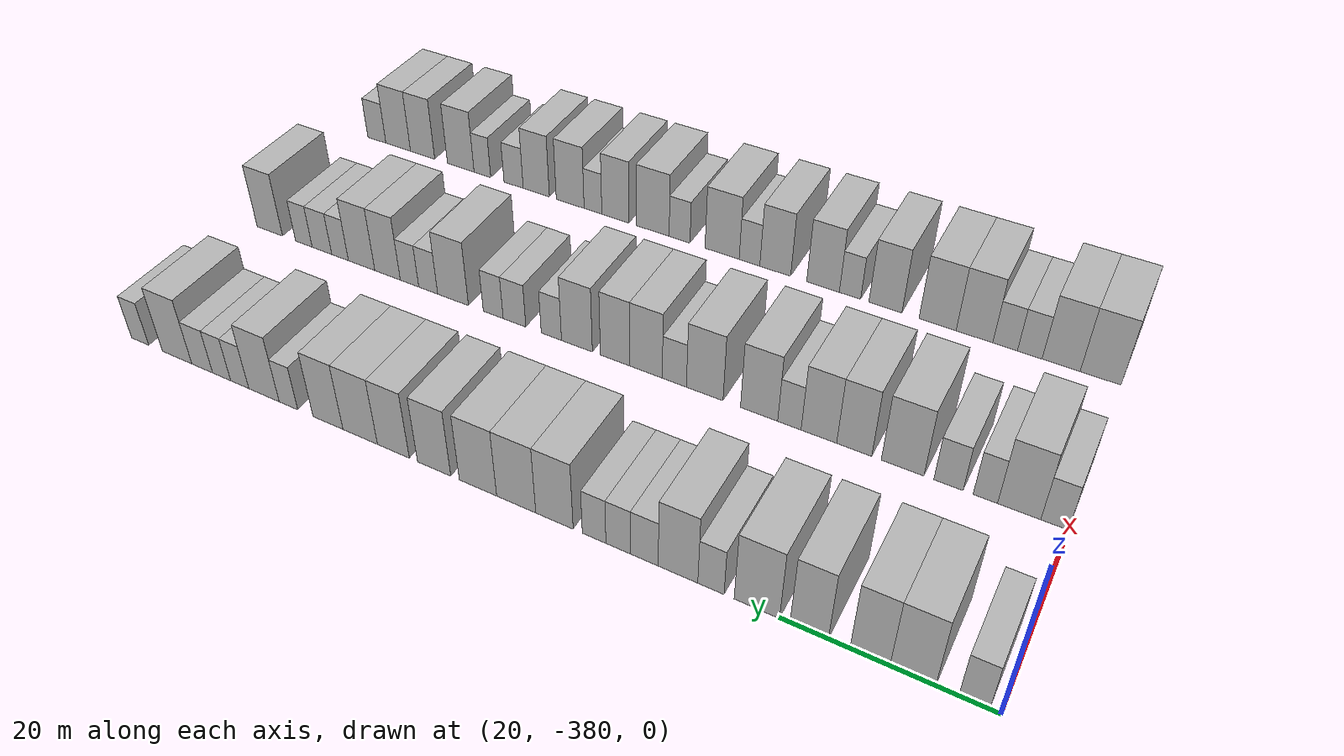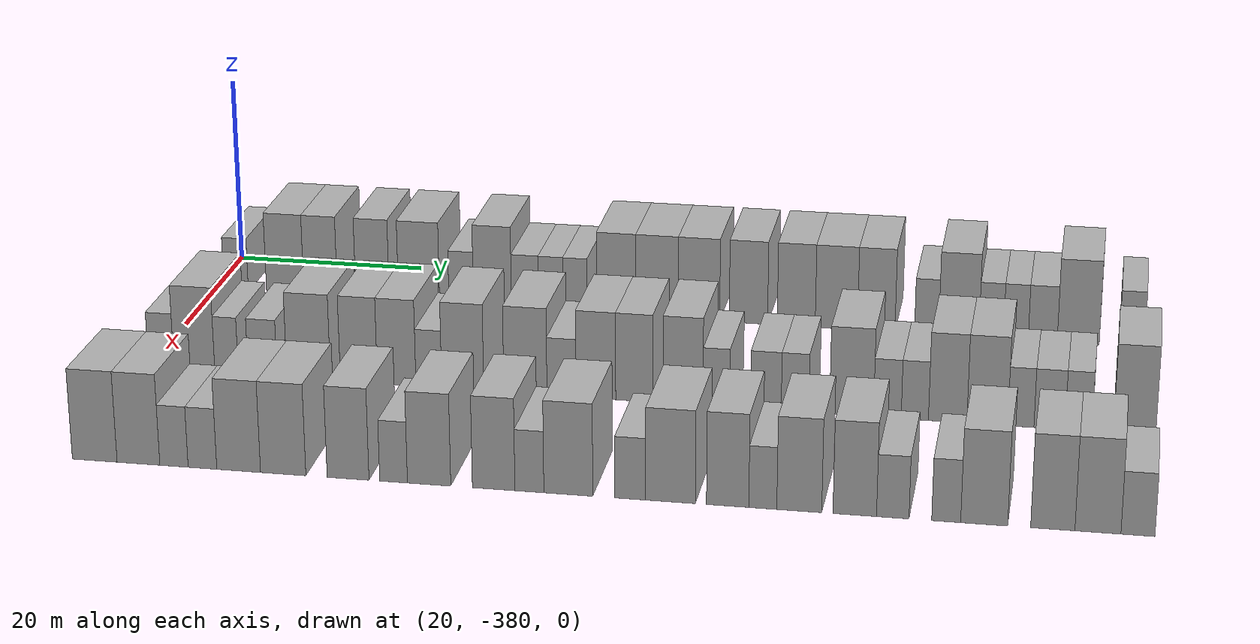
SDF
<sdf version="1.6">
 <world name="default">
  <model name="building_1">
   <static>1</static>
   <pose>25.0000 -377.6687 0 0.000000 0.000000 0.000000</pose>
   <link name="link">
    <pose>0 0 3.00 0 0 0</pose>
    <collision name="collision"><geometry><box><size>10.0000 2.6627 6.0000</size></box></geometry></collision>
    <visual name="visual">
     <cast_shadows>0</cast_shadows>
     <geometry><box><size>10.0000 2.6627 6.0000</size></box></geometry>
     <material>
      <script>
       <uri>model://HANNAS_wall/materials/scripts</uri>
       <uri>model://HANNAS_wall/materials/textures</uri>
       <name>vrc/HANNAS_wall</name>
      </script>
     </material>
    </visual>
   </link>
  </model>
  <model name="building_2">
   <static>1</static>
   <pose>25.0000 -372.3006 0 0.000000 0.000000 0.000000</pose>
   <link name="link">
    <pose>0 0 4.50 0 0 0</pose>
    <collision name="collision"><geometry><box><size>10.0000 4.0735 9.0000</size></box></geometry></collision>
    <visual name="visual">
     <cast_shadows>0</cast_shadows>
     <geometry><box><size>10.0000 4.0735 9.0000</size></box></geometry>
     <material>
      <script>
       <uri>model://HANNAS_wall/materials/scripts</uri>
       <uri>model://HANNAS_wall/materials/textures</uri>
       <name>vrc/HANNAS_wall</name>
      </script>
     </material>
    </visual>
   </link>
  </model>
  <model name="building_3">
   <static>1</static>
   <pose>25.0000 -368.4430 0 0.000000 0.000000 0.000000</pose>
   <link name="link">
    <pose>0 0 4.50 0 0 0</pose>
    <collision name="collision"><geometry><box><size>10.0000 3.6417 9.0000</size></box></geometry></collision>
    <visual name="visual">
     <cast_shadows>0</cast_shadows>
     <geometry><box><size>10.0000 3.6417 9.0000</size></box></geometry>
     <material>
      <script>
       <uri>model://HANNAS_wall/materials/scripts</uri>
       <uri>model://HANNAS_wall/materials/textures</uri>
       <name>vrc/HANNAS_wall</name>
      </script>
     </material>
    </visual>
   </link>
  </model>
  <model name="building_4">
   <static>1</static>
   <pose>25.0000 -362.8144 0 0.000000 0.000000 0.000000</pose>
   <link name="link">
    <pose>0 0 4.50 0 0 0</pose>
    <collision name="collision"><geometry><box><size>10.0000 3.6155 9.0000</size></box></geometry></collision>
    <visual name="visual">
     <cast_shadows>0</cast_shadows>
     <geometry><box><size>10.0000 3.6155 9.0000</size></box></geometry>
     <material>
      <script>
       <uri>model://HANNAS_wall/materials/scripts</uri>
       <uri>model://HANNAS_wall/materials/textures</uri>
       <name>vrc/HANNAS_wall</name>
      </script>
     </material>
    </visual>
   </link>
  </model>
  <model name="building_5">
   <static>1</static>
   <pose>25.0000 -357.7991 0 0.000000 0.000000 0.000000</pose>
   <link name="link">
    <pose>0 0 4.50 0 0 0</pose>
    <collision name="collision"><geometry><box><size>10.0000 4.4150 9.0000</size></box></geometry></collision>
    <visual name="visual">
     <cast_shadows>0</cast_shadows>
     <geometry><box><size>10.0000 4.4150 9.0000</size></box></geometry>
     <material>
      <script>
       <uri>model://HANNAS_wall/materials/scripts</uri>
       <uri>model://HANNAS_wall/materials/textures</uri>
       <name>vrc/HANNAS_wall</name>
      </script>
     </material>
    </visual>
   </link>
  </model>
  <model name="building_6">
   <static>1</static>
   <pose>25.0000 -353.2756 0 0.000000 0.000000 0.000000</pose>
   <link name="link">
    <pose>0 0 3.00 0 0 0</pose>
    <collision name="collision"><geometry><box><size>10.0000 2.6321 6.0000</size></box></geometry></collision>
    <visual name="visual">
     <cast_shadows>0</cast_shadows>
     <geometry><box><size>10.0000 2.6321 6.0000</size></box></geometry>
     <material>
      <script>
       <uri>model://HANNAS_wall/materials/scripts</uri>
       <uri>model://HANNAS_wall/materials/textures</uri>
       <name>vrc/HANNAS_wall</name>
      </script>
     </material>
    </visual>
   </link>
  </model>
  <model name="building_7">
   <static>1</static>
   <pose>25.0000 -349.9345 0 0.000000 0.000000 0.000000</pose>
   <link name="link">
    <pose>0 0 4.50 0 0 0</pose>
    <collision name="collision"><geometry><box><size>10.0000 4.0500 9.0000</size></box></geometry></collision>
    <visual name="visual">
     <cast_shadows>0</cast_shadows>
     <geometry><box><size>10.0000 4.0500 9.0000</size></box></geometry>
     <material>
      <script>
       <uri>model://HANNAS_wall/materials/scripts</uri>
       <uri>model://HANNAS_wall/materials/textures</uri>
       <name>vrc/HANNAS_wall</name>
      </script>
     </material>
    </visual>
   </link>
  </model>
  <model name="building_8">
   <static>1</static>
   <pose>25.0000 -346.4690 0 0.000000 0.000000 0.000000</pose>
   <link name="link">
    <pose>0 0 3.00 0 0 0</pose>
    <collision name="collision"><geometry><box><size>10.0000 2.8810 6.0000</size></box></geometry></collision>
    <visual name="visual">
     <cast_shadows>0</cast_shadows>
     <geometry><box><size>10.0000 2.8810 6.0000</size></box></geometry>
     <material>
      <script>
       <uri>model://HANNAS_wall/materials/scripts</uri>
       <uri>model://HANNAS_wall/materials/textures</uri>
       <name>vrc/HANNAS_wall</name>
      </script>
     </material>
    </visual>
   </link>
  </model>
  <model name="building_9">
   <static>1</static>
   <pose>25.0000 -343.7226 0 0.000000 0.000000 0.000000</pose>
   <link name="link">
    <pose>0 0 3.00 0 0 0</pose>
    <collision name="collision"><geometry><box><size>10.0000 2.6119 6.0000</size></box></geometry></collision>
    <visual name="visual">
     <cast_shadows>0</cast_shadows>
     <geometry><box><size>10.0000 2.6119 6.0000</size></box></geometry>
     <material>
      <script>
       <uri>model://HANNAS_wall/materials/scripts</uri>
       <uri>model://HANNAS_wall/materials/textures</uri>
       <name>vrc/HANNAS_wall</name>
      </script>
     </material>
    </visual>
   </link>
  </model>
  <model name="building_10">
   <static>1</static>
   <pose>25.0000 -341.1468 0 0.000000 0.000000 0.000000</pose>
   <link name="link">
    <pose>0 0 3.00 0 0 0</pose>
    <collision name="collision"><geometry><box><size>10.0000 2.5396 6.0000</size></box></geometry></collision>
    <visual name="visual">
     <cast_shadows>0</cast_shadows>
     <geometry><box><size>10.0000 2.5396 6.0000</size></box></geometry>
     <material>
      <script>
       <uri>model://HANNAS_wall/materials/scripts</uri>
       <uri>model://HANNAS_wall/materials/textures</uri>
       <name>vrc/HANNAS_wall</name>
      </script>
     </material>
    </visual>
   </link>
  </model>
  <model name="building_11">
   <static>1</static>
   <pose>25.0000 -336.8118 0 0.000000 0.000000 0.000000</pose>
   <link name="link">
    <pose>0 0 4.50 0 0 0</pose>
    <collision name="collision"><geometry><box><size>10.0000 4.1303 9.0000</size></box></geometry></collision>
    <visual name="visual">
     <cast_shadows>0</cast_shadows>
     <geometry><box><size>10.0000 4.1303 9.0000</size></box></geometry>
     <material>
      <script>
       <uri>model://HANNAS_wall/materials/scripts</uri>
       <uri>model://HANNAS_wall/materials/textures</uri>
       <name>vrc/HANNAS_wall</name>
      </script>
     </material>
    </visual>
   </link>
  </model>
  <model name="building_12">
   <static>1</static>
   <pose>25.0000 -332.5294 0 0.000000 0.000000 0.000000</pose>
   <link name="link">
    <pose>0 0 4.50 0 0 0</pose>
    <collision name="collision"><geometry><box><size>10.0000 4.4346 9.0000</size></box></geometry></collision>
    <visual name="visual">
     <cast_shadows>0</cast_shadows>
     <geometry><box><size>10.0000 4.4346 9.0000</size></box></geometry>
     <material>
      <script>
       <uri>model://HANNAS_wall/materials/scripts</uri>
       <uri>model://HANNAS_wall/materials/textures</uri>
       <name>vrc/HANNAS_wall</name>
      </script>
     </material>
    </visual>
   </link>
  </model>
  <model name="building_13">
   <static>1</static>
   <pose>25.0000 -328.1446 0 0.000000 0.000000 0.000000</pose>
   <link name="link">
    <pose>0 0 4.50 0 0 0</pose>
    <collision name="collision"><geometry><box><size>10.0000 4.3350 9.0000</size></box></geometry></collision>
    <visual name="visual">
     <cast_shadows>0</cast_shadows>
     <geometry><box><size>10.0000 4.3350 9.0000</size></box></geometry>
     <material>
      <script>
       <uri>model://HANNAS_wall/materials/scripts</uri>
       <uri>model://HANNAS_wall/materials/textures</uri>
       <name>vrc/HANNAS_wall</name>
      </script>
     </material>
    </visual>
   </link>
  </model>
  <model name="building_14">
   <static>1</static>
   <pose>25.0000 -322.9894 0 0.000000 0.000000 0.000000</pose>
   <link name="link">
    <pose>0 0 4.50 0 0 0</pose>
    <collision name="collision"><geometry><box><size>10.0000 3.9753 9.0000</size></box></geometry></collision>
    <visual name="visual">
     <cast_shadows>0</cast_shadows>
     <geometry><box><size>10.0000 3.9753 9.0000</size></box></geometry>
     <material>
      <script>
       <uri>model://HANNAS_wall/materials/scripts</uri>
       <uri>model://HANNAS_wall/materials/textures</uri>
       <name>vrc/HANNAS_wall</name>
      </script>
     </material>
    </visual>
   </link>
  </model>
  <model name="building_15">
   <static>1</static>
   <pose>25.0000 -318.0408 0 0.000000 0.000000 0.000000</pose>
   <link name="link">
    <pose>0 0 4.50 0 0 0</pose>
    <collision name="collision"><geometry><box><size>10.0000 3.9221 9.0000</size></box></geometry></collision>
    <visual name="visual">
     <cast_shadows>0</cast_shadows>
     <geometry><box><size>10.0000 3.9221 9.0000</size></box></geometry>
     <material>
      <script>
       <uri>model://HANNAS_wall/materials/scripts</uri>
       <uri>model://HANNAS_wall/materials/textures</uri>
       <name>vrc/HANNAS_wall</name>
      </script>
     </material>
    </visual>
   </link>
  </model>
  <model name="building_16">
   <static>1</static>
   <pose>25.0000 -313.9047 0 0.000000 0.000000 0.000000</pose>
   <link name="link">
    <pose>0 0 4.50 0 0 0</pose>
    <collision name="collision"><geometry><box><size>10.0000 4.3501 9.0000</size></box></geometry></collision>
    <visual name="visual">
     <cast_shadows>0</cast_shadows>
     <geometry><box><size>10.0000 4.3501 9.0000</size></box></geometry>
     <material>
      <script>
       <uri>model://HANNAS_wall/materials/scripts</uri>
       <uri>model://HANNAS_wall/materials/textures</uri>
       <name>vrc/HANNAS_wall</name>
      </script>
     </material>
    </visual>
   </link>
  </model>
  <model name="building_17">
   <static>1</static>
   <pose>25.0000 -309.8075 0 0.000000 0.000000 0.000000</pose>
   <link name="link">
    <pose>0 0 4.50 0 0 0</pose>
    <collision name="collision"><geometry><box><size>10.0000 3.8443 9.0000</size></box></geometry></collision>
    <visual name="visual">
     <cast_shadows>0</cast_shadows>
     <geometry><box><size>10.0000 3.8443 9.0000</size></box></geometry>
     <material>
      <script>
       <uri>model://HANNAS_wall/materials/scripts</uri>
       <uri>model://HANNAS_wall/materials/textures</uri>
       <name>vrc/HANNAS_wall</name>
      </script>
     </material>
    </visual>
   </link>
  </model>
  <model name="building_18">
   <static>1</static>
   <pose>25.0000 -304.6576 0 0.000000 0.000000 0.000000</pose>
   <link name="link">
    <pose>0 0 3.00 0 0 0</pose>
    <collision name="collision"><geometry><box><size>10.0000 2.4554 6.0000</size></box></geometry></collision>
    <visual name="visual">
     <cast_shadows>0</cast_shadows>
     <geometry><box><size>10.0000 2.4554 6.0000</size></box></geometry>
     <material>
      <script>
       <uri>model://HANNAS_wall/materials/scripts</uri>
       <uri>model://HANNAS_wall/materials/textures</uri>
       <name>vrc/HANNAS_wall</name>
      </script>
     </material>
    </visual>
   </link>
  </model>
  <model name="building_19">
   <static>1</static>
   <pose>25.0000 -301.3828 0 0.000000 0.000000 0.000000</pose>
   <link name="link">
    <pose>0 0 4.50 0 0 0</pose>
    <collision name="collision"><geometry><box><size>10.0000 4.0942 9.0000</size></box></geometry></collision>
    <visual name="visual">
     <cast_shadows>0</cast_shadows>
     <geometry><box><size>10.0000 4.0942 9.0000</size></box></geometry>
     <material>
      <script>
       <uri>model://HANNAS_wall/materials/scripts</uri>
       <uri>model://HANNAS_wall/materials/textures</uri>
       <name>vrc/HANNAS_wall</name>
      </script>
     </material>
    </visual>
   </link>
  </model>
  <model name="building_20">
   <static>1</static>
   <pose>25.0000 -298.0939 0 0.000000 0.000000 0.000000</pose>
   <link name="link">
    <pose>0 0 3.00 0 0 0</pose>
    <collision name="collision"><geometry><box><size>10.0000 2.4836 6.0000</size></box></geometry></collision>
    <visual name="visual">
     <cast_shadows>0</cast_shadows>
     <geometry><box><size>10.0000 2.4836 6.0000</size></box></geometry>
     <material>
      <script>
       <uri>model://HANNAS_wall/materials/scripts</uri>
       <uri>model://HANNAS_wall/materials/textures</uri>
       <name>vrc/HANNAS_wall</name>
      </script>
     </material>
    </visual>
   </link>
  </model>
  <model name="building_21">
   <static>1</static>
   <pose>25.0000 -295.6009 0 0.000000 0.000000 0.000000</pose>
   <link name="link">
    <pose>0 0 3.00 0 0 0</pose>
    <collision name="collision"><geometry><box><size>10.0000 2.5025 6.0000</size></box></geometry></collision>
    <visual name="visual">
     <cast_shadows>0</cast_shadows>
     <geometry><box><size>10.0000 2.5025 6.0000</size></box></geometry>
     <material>
      <script>
       <uri>model://HANNAS_wall/materials/scripts</uri>
       <uri>model://HANNAS_wall/materials/textures</uri>
       <name>vrc/HANNAS_wall</name>
      </script>
     </material>
    </visual>
   </link>
  </model>
  <model name="building_22">
   <static>1</static>
   <pose>25.0000 -292.8874 0 0.000000 0.000000 0.000000</pose>
   <link name="link">
    <pose>0 0 3.00 0 0 0</pose>
    <collision name="collision"><geometry><box><size>10.0000 2.9245 6.0000</size></box></geometry></collision>
    <visual name="visual">
     <cast_shadows>0</cast_shadows>
     <geometry><box><size>10.0000 2.9245 6.0000</size></box></geometry>
     <material>
      <script>
       <uri>model://HANNAS_wall/materials/scripts</uri>
       <uri>model://HANNAS_wall/materials/textures</uri>
       <name>vrc/HANNAS_wall</name>
      </script>
     </material>
    </visual>
   </link>
  </model>
  <model name="building_23">
   <static>1</static>
   <pose>25.0000 -289.3206 0 0.000000 0.000000 0.000000</pose>
   <link name="link">
    <pose>0 0 4.50 0 0 0</pose>
    <collision name="collision"><geometry><box><size>10.0000 4.2092 9.0000</size></box></geometry></collision>
    <visual name="visual">
     <cast_shadows>0</cast_shadows>
     <geometry><box><size>10.0000 4.2092 9.0000</size></box></geometry>
     <material>
      <script>
       <uri>model://HANNAS_wall/materials/scripts</uri>
       <uri>model://HANNAS_wall/materials/textures</uri>
       <name>vrc/HANNAS_wall</name>
      </script>
     </material>
    </visual>
   </link>
  </model>
  <model name="building_24">
   <static>1</static>
   <pose>25.0000 -283.9570 0 0.000000 0.000000 0.000000</pose>
   <link name="link">
    <pose>0 0 3.00 0 0 0</pose>
    <collision name="collision"><geometry><box><size>10.0000 2.5179 6.0000</size></box></geometry></collision>
    <visual name="visual">
     <cast_shadows>0</cast_shadows>
     <geometry><box><size>10.0000 2.5179 6.0000</size></box></geometry>
     <material>
      <script>
       <uri>model://HANNAS_wall/materials/scripts</uri>
       <uri>model://HANNAS_wall/materials/textures</uri>
       <name>vrc/HANNAS_wall</name>
      </script>
     </material>
    </visual>
   </link>
  </model>
  <model name="building_198">
   <static>1</static>
   <pose>47.0000 -378.6836 0 0.000000 0.000000 0.000000</pose>
   <link name="link">
    <pose>0 0 3.00 0 0 0</pose>
    <collision name="collision"><geometry><box><size>10.0000 2.6328 6.0000</size></box></geometry></collision>
    <visual name="visual">
     <cast_shadows>0</cast_shadows>
     <geometry><box><size>10.0000 2.6328 6.0000</size></box></geometry>
     <material>
      <script>
       <uri>model://HANNAS_wall/materials/scripts</uri>
       <uri>model://HANNAS_wall/materials/textures</uri>
       <name>vrc/HANNAS_wall</name>
      </script>
     </material>
    </visual>
   </link>
  </model>
  <model name="building_199">
   <static>1</static>
   <pose>47.0000 -375.2767 0 0.000000 0.000000 0.000000</pose>
   <link name="link">
    <pose>0 0 4.50 0 0 0</pose>
    <collision name="collision"><geometry><box><size>10.0000 4.1810 9.0000</size></box></geometry></collision>
    <visual name="visual">
     <cast_shadows>0</cast_shadows>
     <geometry><box><size>10.0000 4.1810 9.0000</size></box></geometry>
     <material>
      <script>
       <uri>model://HANNAS_wall/materials/scripts</uri>
       <uri>model://HANNAS_wall/materials/textures</uri>
       <name>vrc/HANNAS_wall</name>
      </script>
     </material>
    </visual>
   </link>
  </model>
  <model name="building_200">
   <static>1</static>
   <pose>47.0000 -371.9806 0 0.000000 0.000000 0.000000</pose>
   <link name="link">
    <pose>0 0 3.00 0 0 0</pose>
    <collision name="collision"><geometry><box><size>10.0000 2.4112 6.0000</size></box></geometry></collision>
    <visual name="visual">
     <cast_shadows>0</cast_shadows>
     <geometry><box><size>10.0000 2.4112 6.0000</size></box></geometry>
     <material>
      <script>
       <uri>model://HANNAS_wall/materials/scripts</uri>
       <uri>model://HANNAS_wall/materials/textures</uri>
       <name>vrc/HANNAS_wall</name>
      </script>
     </material>
    </visual>
   </link>
  </model>
  <model name="building_201">
   <static>1</static>
   <pose>47.0000 -368.2989 0 0.000000 0.000000 0.000000</pose>
   <link name="link">
    <pose>0 0 3.00 0 0 0</pose>
    <collision name="collision"><geometry><box><size>10.0000 2.9522 6.0000</size></box></geometry></collision>
    <visual name="visual">
     <cast_shadows>0</cast_shadows>
     <geometry><box><size>10.0000 2.9522 6.0000</size></box></geometry>
     <material>
      <script>
       <uri>model://HANNAS_wall/materials/scripts</uri>
       <uri>model://HANNAS_wall/materials/textures</uri>
       <name>vrc/HANNAS_wall</name>
      </script>
     </material>
    </visual>
   </link>
  </model>
  <model name="building_202">
   <static>1</static>
   <pose>47.0000 -363.6136 0 0.000000 0.000000 0.000000</pose>
   <link name="link">
    <pose>0 0 4.50 0 0 0</pose>
    <collision name="collision"><geometry><box><size>10.0000 4.4186 9.0000</size></box></geometry></collision>
    <visual name="visual">
     <cast_shadows>0</cast_shadows>
     <geometry><box><size>10.0000 4.4186 9.0000</size></box></geometry>
     <material>
      <script>
       <uri>model://HANNAS_wall/materials/scripts</uri>
       <uri>model://HANNAS_wall/materials/textures</uri>
       <name>vrc/HANNAS_wall</name>
      </script>
     </material>
    </visual>
   </link>
  </model>
  <model name="building_203">
   <static>1</static>
   <pose>47.0000 -358.5353 0 0.000000 0.000000 0.000000</pose>
   <link name="link">
    <pose>0 0 4.50 0 0 0</pose>
    <collision name="collision"><geometry><box><size>10.0000 3.7380 9.0000</size></box></geometry></collision>
    <visual name="visual">
     <cast_shadows>0</cast_shadows>
     <geometry><box><size>10.0000 3.7380 9.0000</size></box></geometry>
     <material>
      <script>
       <uri>model://HANNAS_wall/materials/scripts</uri>
       <uri>model://HANNAS_wall/materials/textures</uri>
       <name>vrc/HANNAS_wall</name>
      </script>
     </material>
    </visual>
   </link>
  </model>
  <model name="building_204">
   <static>1</static>
   <pose>47.0000 -354.7318 0 0.000000 0.000000 0.000000</pose>
   <link name="link">
    <pose>0 0 4.50 0 0 0</pose>
    <collision name="collision"><geometry><box><size>10.0000 3.8689 9.0000</size></box></geometry></collision>
    <visual name="visual">
     <cast_shadows>0</cast_shadows>
     <geometry><box><size>10.0000 3.8689 9.0000</size></box></geometry>
     <material>
      <script>
       <uri>model://HANNAS_wall/materials/scripts</uri>
       <uri>model://HANNAS_wall/materials/textures</uri>
       <name>vrc/HANNAS_wall</name>
      </script>
     </material>
    </visual>
   </link>
  </model>
  <model name="building_205">
   <static>1</static>
   <pose>47.0000 -351.5055 0 0.000000 0.000000 0.000000</pose>
   <link name="link">
    <pose>0 0 3.00 0 0 0</pose>
    <collision name="collision"><geometry><box><size>10.0000 2.5837 6.0000</size></box></geometry></collision>
    <visual name="visual">
     <cast_shadows>0</cast_shadows>
     <geometry><box><size>10.0000 2.5837 6.0000</size></box></geometry>
     <material>
      <script>
       <uri>model://HANNAS_wall/materials/scripts</uri>
       <uri>model://HANNAS_wall/materials/textures</uri>
       <name>vrc/HANNAS_wall</name>
      </script>
     </material>
    </visual>
   </link>
  </model>
  <model name="building_206">
   <static>1</static>
   <pose>47.0000 -348.1180 0 0.000000 0.000000 0.000000</pose>
   <link name="link">
    <pose>0 0 4.50 0 0 0</pose>
    <collision name="collision"><geometry><box><size>10.0000 4.1912 9.0000</size></box></geometry></collision>
    <visual name="visual">
     <cast_shadows>0</cast_shadows>
     <geometry><box><size>10.0000 4.1912 9.0000</size></box></geometry>
     <material>
      <script>
       <uri>model://HANNAS_wall/materials/scripts</uri>
       <uri>model://HANNAS_wall/materials/textures</uri>
       <name>vrc/HANNAS_wall</name>
      </script>
     </material>
    </visual>
   </link>
  </model>
  <model name="building_207">
   <static>1</static>
   <pose>47.0000 -341.8865 0 0.000000 0.000000 0.000000</pose>
   <link name="link">
    <pose>0 0 4.50 0 0 0</pose>
    <collision name="collision"><geometry><box><size>10.0000 4.2717 9.0000</size></box></geometry></collision>
    <visual name="visual">
     <cast_shadows>0</cast_shadows>
     <geometry><box><size>10.0000 4.2717 9.0000</size></box></geometry>
     <material>
      <script>
       <uri>model://HANNAS_wall/materials/scripts</uri>
       <uri>model://HANNAS_wall/materials/textures</uri>
       <name>vrc/HANNAS_wall</name>
      </script>
     </material>
    </visual>
   </link>
  </model>
  <model name="building_208">
   <static>1</static>
   <pose>47.0000 -338.3193 0 0.000000 0.000000 0.000000</pose>
   <link name="link">
    <pose>0 0 3.00 0 0 0</pose>
    <collision name="collision"><geometry><box><size>10.0000 2.8627 6.0000</size></box></geometry></collision>
    <visual name="visual">
     <cast_shadows>0</cast_shadows>
     <geometry><box><size>10.0000 2.8627 6.0000</size></box></geometry>
     <material>
      <script>
       <uri>model://HANNAS_wall/materials/scripts</uri>
       <uri>model://HANNAS_wall/materials/textures</uri>
       <name>vrc/HANNAS_wall</name>
      </script>
     </material>
    </visual>
   </link>
  </model>
  <model name="building_209">
   <static>1</static>
   <pose>47.0000 -334.9326 0 0.000000 0.000000 0.000000</pose>
   <link name="link">
    <pose>0 0 4.50 0 0 0</pose>
    <collision name="collision"><geometry><box><size>10.0000 3.9107 9.0000</size></box></geometry></collision>
    <visual name="visual">
     <cast_shadows>0</cast_shadows>
     <geometry><box><size>10.0000 3.9107 9.0000</size></box></geometry>
     <material>
      <script>
       <uri>model://HANNAS_wall/materials/scripts</uri>
       <uri>model://HANNAS_wall/materials/textures</uri>
       <name>vrc/HANNAS_wall</name>
      </script>
     </material>
    </visual>
   </link>
  </model>
  <model name="building_210">
   <static>1</static>
   <pose>47.0000 -331.1665 0 0.000000 0.000000 0.000000</pose>
   <link name="link">
    <pose>0 0 4.50 0 0 0</pose>
    <collision name="collision"><geometry><box><size>10.0000 3.6214 9.0000</size></box></geometry></collision>
    <visual name="visual">
     <cast_shadows>0</cast_shadows>
     <geometry><box><size>10.0000 3.6214 9.0000</size></box></geometry>
     <material>
      <script>
       <uri>model://HANNAS_wall/materials/scripts</uri>
       <uri>model://HANNAS_wall/materials/textures</uri>
       <name>vrc/HANNAS_wall</name>
      </script>
     </material>
    </visual>
   </link>
  </model>
  <model name="building_211">
   <static>1</static>
   <pose>47.0000 -326.4062 0 0.000000 0.000000 0.000000</pose>
   <link name="link">
    <pose>0 0 4.50 0 0 0</pose>
    <collision name="collision"><geometry><box><size>10.0000 3.8991 9.0000</size></box></geometry></collision>
    <visual name="visual">
     <cast_shadows>0</cast_shadows>
     <geometry><box><size>10.0000 3.8991 9.0000</size></box></geometry>
     <material>
      <script>
       <uri>model://HANNAS_wall/materials/scripts</uri>
       <uri>model://HANNAS_wall/materials/textures</uri>
       <name>vrc/HANNAS_wall</name>
      </script>
     </material>
    </visual>
   </link>
  </model>
  <model name="building_212">
   <static>1</static>
   <pose>47.0000 -323.1576 0 0.000000 0.000000 0.000000</pose>
   <link name="link">
    <pose>0 0 3.00 0 0 0</pose>
    <collision name="collision"><geometry><box><size>10.0000 2.5982 6.0000</size></box></geometry></collision>
    <visual name="visual">
     <cast_shadows>0</cast_shadows>
     <geometry><box><size>10.0000 2.5982 6.0000</size></box></geometry>
     <material>
      <script>
       <uri>model://HANNAS_wall/materials/scripts</uri>
       <uri>model://HANNAS_wall/materials/textures</uri>
       <name>vrc/HANNAS_wall</name>
      </script>
     </material>
    </visual>
   </link>
  </model>
  <model name="building_213">
   <static>1</static>
   <pose>47.0000 -318.3685 0 0.000000 0.000000 0.000000</pose>
   <link name="link">
    <pose>0 0 3.00 0 0 0</pose>
    <collision name="collision"><geometry><box><size>10.0000 2.9801 6.0000</size></box></geometry></collision>
    <visual name="visual">
     <cast_shadows>0</cast_shadows>
     <geometry><box><size>10.0000 2.9801 6.0000</size></box></geometry>
     <material>
      <script>
       <uri>model://HANNAS_wall/materials/scripts</uri>
       <uri>model://HANNAS_wall/materials/textures</uri>
       <name>vrc/HANNAS_wall</name>
      </script>
     </material>
    </visual>
   </link>
  </model>
  <model name="building_214">
   <static>1</static>
   <pose>47.0000 -315.5544 0 0.000000 0.000000 0.000000</pose>
   <link name="link">
    <pose>0 0 3.00 0 0 0</pose>
    <collision name="collision"><geometry><box><size>10.0000 2.6480 6.0000</size></box></geometry></collision>
    <visual name="visual">
     <cast_shadows>0</cast_shadows>
     <geometry><box><size>10.0000 2.6480 6.0000</size></box></geometry>
     <material>
      <script>
       <uri>model://HANNAS_wall/materials/scripts</uri>
       <uri>model://HANNAS_wall/materials/textures</uri>
       <name>vrc/HANNAS_wall</name>
      </script>
     </material>
    </visual>
   </link>
  </model>
  <model name="building_215">
   <static>1</static>
   <pose>47.0000 -310.1244 0 0.000000 0.000000 0.000000</pose>
   <link name="link">
    <pose>0 0 4.50 0 0 0</pose>
    <collision name="collision"><geometry><box><size>10.0000 4.2119 9.0000</size></box></geometry></collision>
    <visual name="visual">
     <cast_shadows>0</cast_shadows>
     <geometry><box><size>10.0000 4.2119 9.0000</size></box></geometry>
     <material>
      <script>
       <uri>model://HANNAS_wall/materials/scripts</uri>
       <uri>model://HANNAS_wall/materials/textures</uri>
       <name>vrc/HANNAS_wall</name>
      </script>
     </material>
    </visual>
   </link>
  </model>
  <model name="building_216">
   <static>1</static>
   <pose>47.0000 -306.6996 0 0.000000 0.000000 0.000000</pose>
   <link name="link">
    <pose>0 0 3.00 0 0 0</pose>
    <collision name="collision"><geometry><box><size>10.0000 2.6378 6.0000</size></box></geometry></collision>
    <visual name="visual">
     <cast_shadows>0</cast_shadows>
     <geometry><box><size>10.0000 2.6378 6.0000</size></box></geometry>
     <material>
      <script>
       <uri>model://HANNAS_wall/materials/scripts</uri>
       <uri>model://HANNAS_wall/materials/textures</uri>
       <name>vrc/HANNAS_wall</name>
      </script>
     </material>
    </visual>
   </link>
  </model>
  <model name="building_217">
   <static>1</static>
   <pose>47.0000 -304.0850 0 0.000000 0.000000 0.000000</pose>
   <link name="link">
    <pose>0 0 3.00 0 0 0</pose>
    <collision name="collision"><geometry><box><size>10.0000 2.5914 6.0000</size></box></geometry></collision>
    <visual name="visual">
     <cast_shadows>0</cast_shadows>
     <geometry><box><size>10.0000 2.5914 6.0000</size></box></geometry>
     <material>
      <script>
       <uri>model://HANNAS_wall/materials/scripts</uri>
       <uri>model://HANNAS_wall/materials/textures</uri>
       <name>vrc/HANNAS_wall</name>
      </script>
     </material>
    </visual>
   </link>
  </model>
  <model name="building_218">
   <static>1</static>
   <pose>47.0000 -300.9670 0 0.000000 0.000000 0.000000</pose>
   <link name="link">
    <pose>0 0 4.50 0 0 0</pose>
    <collision name="collision"><geometry><box><size>10.0000 3.6446 9.0000</size></box></geometry></collision>
    <visual name="visual">
     <cast_shadows>0</cast_shadows>
     <geometry><box><size>10.0000 3.6446 9.0000</size></box></geometry>
     <material>
      <script>
       <uri>model://HANNAS_wall/materials/scripts</uri>
       <uri>model://HANNAS_wall/materials/textures</uri>
       <name>vrc/HANNAS_wall</name>
      </script>
     </material>
    </visual>
   </link>
  </model>
  <model name="building_219">
   <static>1</static>
   <pose>47.0000 -297.2168 0 0.000000 0.000000 0.000000</pose>
   <link name="link">
    <pose>0 0 4.50 0 0 0</pose>
    <collision name="collision"><geometry><box><size>10.0000 3.8558 9.0000</size></box></geometry></collision>
    <visual name="visual">
     <cast_shadows>0</cast_shadows>
     <geometry><box><size>10.0000 3.8558 9.0000</size></box></geometry>
     <material>
      <script>
       <uri>model://HANNAS_wall/materials/scripts</uri>
       <uri>model://HANNAS_wall/materials/textures</uri>
       <name>vrc/HANNAS_wall</name>
      </script>
     </material>
    </visual>
   </link>
  </model>
  <model name="building_220">
   <static>1</static>
   <pose>47.0000 -294.0566 0 0.000000 0.000000 0.000000</pose>
   <link name="link">
    <pose>0 0 3.00 0 0 0</pose>
    <collision name="collision"><geometry><box><size>10.0000 2.4646 6.0000</size></box></geometry></collision>
    <visual name="visual">
     <cast_shadows>0</cast_shadows>
     <geometry><box><size>10.0000 2.4646 6.0000</size></box></geometry>
     <material>
      <script>
       <uri>model://HANNAS_wall/materials/scripts</uri>
       <uri>model://HANNAS_wall/materials/textures</uri>
       <name>vrc/HANNAS_wall</name>
      </script>
     </material>
    </visual>
   </link>
  </model>
  <model name="building_221">
   <static>1</static>
   <pose>47.0000 -291.3610 0 0.000000 0.000000 0.000000</pose>
   <link name="link">
    <pose>0 0 3.00 0 0 0</pose>
    <collision name="collision"><geometry><box><size>10.0000 2.9266 6.0000</size></box></geometry></collision>
    <visual name="visual">
     <cast_shadows>0</cast_shadows>
     <geometry><box><size>10.0000 2.9266 6.0000</size></box></geometry>
     <material>
      <script>
       <uri>model://HANNAS_wall/materials/scripts</uri>
       <uri>model://HANNAS_wall/materials/textures</uri>
       <name>vrc/HANNAS_wall</name>
      </script>
     </material>
    </visual>
   </link>
  </model>
  <model name="building_222">
   <static>1</static>
   <pose>47.0000 -288.6434 0 0.000000 0.000000 0.000000</pose>
   <link name="link">
    <pose>0 0 3.00 0 0 0</pose>
    <collision name="collision"><geometry><box><size>10.0000 2.5086 6.0000</size></box></geometry></collision>
    <visual name="visual">
     <cast_shadows>0</cast_shadows>
     <geometry><box><size>10.0000 2.5086 6.0000</size></box></geometry>
     <material>
      <script>
       <uri>model://HANNAS_wall/materials/scripts</uri>
       <uri>model://HANNAS_wall/materials/textures</uri>
       <name>vrc/HANNAS_wall</name>
      </script>
     </material>
    </visual>
   </link>
  </model>
  <model name="building_223">
   <static>1</static>
   <pose>47.0000 -283.4224 0 0.000000 0.000000 0.000000</pose>
   <link name="link">
    <pose>0 0 4.50 0 0 0</pose>
    <collision name="collision"><geometry><box><size>10.0000 3.9334 9.0000</size></box></geometry></collision>
    <visual name="visual">
     <cast_shadows>0</cast_shadows>
     <geometry><box><size>10.0000 3.9334 9.0000</size></box></geometry>
     <material>
      <script>
       <uri>model://HANNAS_wall/materials/scripts</uri>
       <uri>model://HANNAS_wall/materials/textures</uri>
       <name>vrc/HANNAS_wall</name>
      </script>
     </material>
    </visual>
   </link>
  </model>
  <model name="building_393">
   <static>1</static>
   <pose>69.0000 -377.8485 0 0.000000 0.000000 0.000000</pose>
   <link name="link">
    <pose>0 0 4.50 0 0 0</pose>
    <collision name="collision"><geometry><box><size>10.0000 4.3029 9.0000</size></box></geometry></collision>
    <visual name="visual">
     <cast_shadows>0</cast_shadows>
     <geometry><box><size>10.0000 4.3029 9.0000</size></box></geometry>
     <material>
      <script>
       <uri>model://HANNAS_wall/materials/scripts</uri>
       <uri>model://HANNAS_wall/materials/textures</uri>
       <name>vrc/HANNAS_wall</name>
      </script>
     </material>
    </visual>
   </link>
  </model>
  <model name="building_394">
   <static>1</static>
   <pose>69.0000 -373.6487 0 0.000000 0.000000 0.000000</pose>
   <link name="link">
    <pose>0 0 4.50 0 0 0</pose>
    <collision name="collision"><geometry><box><size>10.0000 4.0967 9.0000</size></box></geometry></collision>
    <visual name="visual">
     <cast_shadows>0</cast_shadows>
     <geometry><box><size>10.0000 4.0967 9.0000</size></box></geometry>
     <material>
      <script>
       <uri>model://HANNAS_wall/materials/scripts</uri>
       <uri>model://HANNAS_wall/materials/textures</uri>
       <name>vrc/HANNAS_wall</name>
      </script>
     </material>
    </visual>
   </link>
  </model>
  <model name="building_395">
   <static>1</static>
   <pose>69.0000 -370.2525 0 0.000000 0.000000 0.000000</pose>
   <link name="link">
    <pose>0 0 3.00 0 0 0</pose>
    <collision name="collision"><geometry><box><size>10.0000 2.6958 6.0000</size></box></geometry></collision>
    <visual name="visual">
     <cast_shadows>0</cast_shadows>
     <geometry><box><size>10.0000 2.6958 6.0000</size></box></geometry>
     <material>
      <script>
       <uri>model://HANNAS_wall/materials/scripts</uri>
       <uri>model://HANNAS_wall/materials/textures</uri>
       <name>vrc/HANNAS_wall</name>
      </script>
     </material>
    </visual>
   </link>
  </model>
  <model name="building_396">
   <static>1</static>
   <pose>69.0000 -367.5415 0 0.000000 0.000000 0.000000</pose>
   <link name="link">
    <pose>0 0 3.00 0 0 0</pose>
    <collision name="collision"><geometry><box><size>10.0000 2.7264 6.0000</size></box></geometry></collision>
    <visual name="visual">
     <cast_shadows>0</cast_shadows>
     <geometry><box><size>10.0000 2.7264 6.0000</size></box></geometry>
     <material>
      <script>
       <uri>model://HANNAS_wall/materials/scripts</uri>
       <uri>model://HANNAS_wall/materials/textures</uri>
       <name>vrc/HANNAS_wall</name>
      </script>
     </material>
    </visual>
   </link>
  </model>
  <model name="building_397">
   <static>1</static>
   <pose>69.0000 -364.1046 0 0.000000 0.000000 0.000000</pose>
   <link name="link">
    <pose>0 0 4.50 0 0 0</pose>
    <collision name="collision"><geometry><box><size>10.0000 4.1474 9.0000</size></box></geometry></collision>
    <visual name="visual">
     <cast_shadows>0</cast_shadows>
     <geometry><box><size>10.0000 4.1474 9.0000</size></box></geometry>
     <material>
      <script>
       <uri>model://HANNAS_wall/materials/scripts</uri>
       <uri>model://HANNAS_wall/materials/textures</uri>
       <name>vrc/HANNAS_wall</name>
      </script>
     </material>
    </visual>
   </link>
  </model>
  <model name="building_398">
   <static>1</static>
   <pose>69.0000 -359.8931 0 0.000000 0.000000 0.000000</pose>
   <link name="link">
    <pose>0 0 4.50 0 0 0</pose>
    <collision name="collision"><geometry><box><size>10.0000 4.2755 9.0000</size></box></geometry></collision>
    <visual name="visual">
     <cast_shadows>0</cast_shadows>
     <geometry><box><size>10.0000 4.2755 9.0000</size></box></geometry>
     <material>
      <script>
       <uri>model://HANNAS_wall/materials/scripts</uri>
       <uri>model://HANNAS_wall/materials/textures</uri>
       <name>vrc/HANNAS_wall</name>
      </script>
     </material>
    </visual>
   </link>
  </model>
  <model name="building_399">
   <static>1</static>
   <pose>69.0000 -353.7959 0 0.000000 0.000000 0.000000</pose>
   <link name="link">
    <pose>0 0 4.50 0 0 0</pose>
    <collision name="collision"><geometry><box><size>10.0000 3.9188 9.0000</size></box></geometry></collision>
    <visual name="visual">
     <cast_shadows>0</cast_shadows>
     <geometry><box><size>10.0000 3.9188 9.0000</size></box></geometry>
     <material>
      <script>
       <uri>model://HANNAS_wall/materials/scripts</uri>
       <uri>model://HANNAS_wall/materials/textures</uri>
       <name>vrc/HANNAS_wall</name>
      </script>
     </material>
    </visual>
   </link>
  </model>
  <model name="building_400">
   <static>1</static>
   <pose>69.0000 -349.5452 0 0.000000 0.000000 0.000000</pose>
   <link name="link">
    <pose>0 0 3.00 0 0 0</pose>
    <collision name="collision"><geometry><box><size>10.0000 2.5825 6.0000</size></box></geometry></collision>
    <visual name="visual">
     <cast_shadows>0</cast_shadows>
     <geometry><box><size>10.0000 2.5825 6.0000</size></box></geometry>
     <material>
      <script>
       <uri>model://HANNAS_wall/materials/scripts</uri>
       <uri>model://HANNAS_wall/materials/textures</uri>
       <name>vrc/HANNAS_wall</name>
      </script>
     </material>
    </visual>
   </link>
  </model>
  <model name="building_401">
   <static>1</static>
   <pose>69.0000 -346.2425 0 0.000000 0.000000 0.000000</pose>
   <link name="link">
    <pose>0 0 4.50 0 0 0</pose>
    <collision name="collision"><geometry><box><size>10.0000 4.0230 9.0000</size></box></geometry></collision>
    <visual name="visual">
     <cast_shadows>0</cast_shadows>
     <geometry><box><size>10.0000 4.0230 9.0000</size></box></geometry>
     <material>
      <script>
       <uri>model://HANNAS_wall/materials/scripts</uri>
       <uri>model://HANNAS_wall/materials/textures</uri>
       <name>vrc/HANNAS_wall</name>
      </script>
     </material>
    </visual>
   </link>
  </model>
  <model name="building_402">
   <static>1</static>
   <pose>69.0000 -340.2710 0 0.000000 0.000000 0.000000</pose>
   <link name="link">
    <pose>0 0 4.50 0 0 0</pose>
    <collision name="collision"><geometry><box><size>10.0000 3.9199 9.0000</size></box></geometry></collision>
    <visual name="visual">
     <cast_shadows>0</cast_shadows>
     <geometry><box><size>10.0000 3.9199 9.0000</size></box></geometry>
     <material>
      <script>
       <uri>model://HANNAS_wall/materials/scripts</uri>
       <uri>model://HANNAS_wall/materials/textures</uri>
       <name>vrc/HANNAS_wall</name>
      </script>
     </material>
    </visual>
   </link>
  </model>
  <model name="building_403">
   <static>1</static>
   <pose>69.0000 -336.9831 0 0.000000 0.000000 0.000000</pose>
   <link name="link">
    <pose>0 0 3.00 0 0 0</pose>
    <collision name="collision"><geometry><box><size>10.0000 2.6561 6.0000</size></box></geometry></collision>
    <visual name="visual">
     <cast_shadows>0</cast_shadows>
     <geometry><box><size>10.0000 2.6561 6.0000</size></box></geometry>
     <material>
      <script>
       <uri>model://HANNAS_wall/materials/scripts</uri>
       <uri>model://HANNAS_wall/materials/textures</uri>
       <name>vrc/HANNAS_wall</name>
      </script>
     </material>
    </visual>
   </link>
  </model>
  <model name="building_404">
   <static>1</static>
   <pose>69.0000 -333.4193 0 0.000000 0.000000 0.000000</pose>
   <link name="link">
    <pose>0 0 4.50 0 0 0</pose>
    <collision name="collision"><geometry><box><size>10.0000 4.4713 9.0000</size></box></geometry></collision>
    <visual name="visual">
     <cast_shadows>0</cast_shadows>
     <geometry><box><size>10.0000 4.4713 9.0000</size></box></geometry>
     <material>
      <script>
       <uri>model://HANNAS_wall/materials/scripts</uri>
       <uri>model://HANNAS_wall/materials/textures</uri>
       <name>vrc/HANNAS_wall</name>
      </script>
     </material>
    </visual>
   </link>
  </model>
  <model name="building_405">
   <static>1</static>
   <pose>69.0000 -327.7790 0 0.000000 0.000000 0.000000</pose>
   <link name="link">
    <pose>0 0 3.00 0 0 0</pose>
    <collision name="collision"><geometry><box><size>10.0000 2.8093 6.0000</size></box></geometry></collision>
    <visual name="visual">
     <cast_shadows>0</cast_shadows>
     <geometry><box><size>10.0000 2.8093 6.0000</size></box></geometry>
     <material>
      <script>
       <uri>model://HANNAS_wall/materials/scripts</uri>
       <uri>model://HANNAS_wall/materials/textures</uri>
       <name>vrc/HANNAS_wall</name>
      </script>
     </material>
    </visual>
   </link>
  </model>
  <model name="building_406">
   <static>1</static>
   <pose>69.0000 -324.1252 0 0.000000 0.000000 0.000000</pose>
   <link name="link">
    <pose>0 0 4.50 0 0 0</pose>
    <collision name="collision"><geometry><box><size>10.0000 4.4982 9.0000</size></box></geometry></collision>
    <visual name="visual">
     <cast_shadows>0</cast_shadows>
     <geometry><box><size>10.0000 4.4982 9.0000</size></box></geometry>
     <material>
      <script>
       <uri>model://HANNAS_wall/materials/scripts</uri>
       <uri>model://HANNAS_wall/materials/textures</uri>
       <name>vrc/HANNAS_wall</name>
      </script>
     </material>
    </visual>
   </link>
  </model>
  <model name="building_407">
   <static>1</static>
   <pose>69.0000 -318.9756 0 0.000000 0.000000 0.000000</pose>
   <link name="link">
    <pose>0 0 4.50 0 0 0</pose>
    <collision name="collision"><geometry><box><size>10.0000 3.8011 9.0000</size></box></geometry></collision>
    <visual name="visual">
     <cast_shadows>0</cast_shadows>
     <geometry><box><size>10.0000 3.8011 9.0000</size></box></geometry>
     <material>
      <script>
       <uri>model://HANNAS_wall/materials/scripts</uri>
       <uri>model://HANNAS_wall/materials/textures</uri>
       <name>vrc/HANNAS_wall</name>
      </script>
     </material>
    </visual>
   </link>
  </model>
  <model name="building_408">
   <static>1</static>
   <pose>69.0000 -315.8202 0 0.000000 0.000000 0.000000</pose>
   <link name="link">
    <pose>0 0 3.00 0 0 0</pose>
    <collision name="collision"><geometry><box><size>10.0000 2.5097 6.0000</size></box></geometry></collision>
    <visual name="visual">
     <cast_shadows>0</cast_shadows>
     <geometry><box><size>10.0000 2.5097 6.0000</size></box></geometry>
     <material>
      <script>
       <uri>model://HANNAS_wall/materials/scripts</uri>
       <uri>model://HANNAS_wall/materials/textures</uri>
       <name>vrc/HANNAS_wall</name>
      </script>
     </material>
    </visual>
   </link>
  </model>
  <model name="building_409">
   <static>1</static>
   <pose>69.0000 -312.5602 0 0.000000 0.000000 0.000000</pose>
   <link name="link">
    <pose>0 0 4.50 0 0 0</pose>
    <collision name="collision"><geometry><box><size>10.0000 4.0102 9.0000</size></box></geometry></collision>
    <visual name="visual">
     <cast_shadows>0</cast_shadows>
     <geometry><box><size>10.0000 4.0102 9.0000</size></box></geometry>
     <material>
      <script>
       <uri>model://HANNAS_wall/materials/scripts</uri>
       <uri>model://HANNAS_wall/materials/textures</uri>
       <name>vrc/HANNAS_wall</name>
      </script>
     </material>
    </visual>
   </link>
  </model>
  <model name="building_410">
   <static>1</static>
   <pose>69.0000 -307.6238 0 0.000000 0.000000 0.000000</pose>
   <link name="link">
    <pose>0 0 4.50 0 0 0</pose>
    <collision name="collision"><geometry><box><size>10.0000 3.8627 9.0000</size></box></geometry></collision>
    <visual name="visual">
     <cast_shadows>0</cast_shadows>
     <geometry><box><size>10.0000 3.8627 9.0000</size></box></geometry>
     <material>
      <script>
       <uri>model://HANNAS_wall/materials/scripts</uri>
       <uri>model://HANNAS_wall/materials/textures</uri>
       <name>vrc/HANNAS_wall</name>
      </script>
     </material>
    </visual>
   </link>
  </model>
  <model name="building_411">
   <static>1</static>
   <pose>69.0000 -304.2579 0 0.000000 0.000000 0.000000</pose>
   <link name="link">
    <pose>0 0 3.00 0 0 0</pose>
    <collision name="collision"><geometry><box><size>10.0000 2.8691 6.0000</size></box></geometry></collision>
    <visual name="visual">
     <cast_shadows>0</cast_shadows>
     <geometry><box><size>10.0000 2.8691 6.0000</size></box></geometry>
     <material>
      <script>
       <uri>model://HANNAS_wall/materials/scripts</uri>
       <uri>model://HANNAS_wall/materials/textures</uri>
       <name>vrc/HANNAS_wall</name>
      </script>
     </material>
    </visual>
   </link>
  </model>
  <model name="building_412">
   <static>1</static>
   <pose>69.0000 -299.5523 0 0.000000 0.000000 0.000000</pose>
   <link name="link">
    <pose>0 0 3.00 0 0 0</pose>
    <collision name="collision"><geometry><box><size>10.0000 2.5422 6.0000</size></box></geometry></collision>
    <visual name="visual">
     <cast_shadows>0</cast_shadows>
     <geometry><box><size>10.0000 2.5422 6.0000</size></box></geometry>
     <material>
      <script>
       <uri>model://HANNAS_wall/materials/scripts</uri>
       <uri>model://HANNAS_wall/materials/textures</uri>
       <name>vrc/HANNAS_wall</name>
      </script>
     </material>
    </visual>
   </link>
  </model>
  <model name="building_413">
   <static>1</static>
   <pose>69.0000 -296.2222 0 0.000000 0.000000 0.000000</pose>
   <link name="link">
    <pose>0 0 4.50 0 0 0</pose>
    <collision name="collision"><geometry><box><size>10.0000 4.1179 9.0000</size></box></geometry></collision>
    <visual name="visual">
     <cast_shadows>0</cast_shadows>
     <geometry><box><size>10.0000 4.1179 9.0000</size></box></geometry>
     <material>
      <script>
       <uri>model://HANNAS_wall/materials/scripts</uri>
       <uri>model://HANNAS_wall/materials/textures</uri>
       <name>vrc/HANNAS_wall</name>
      </script>
     </material>
    </visual>
   </link>
  </model>
  <model name="building_414">
   <static>1</static>
   <pose>69.0000 -290.2398 0 0.000000 0.000000 0.000000</pose>
   <link name="link">
    <pose>0 0 4.50 0 0 0</pose>
    <collision name="collision"><geometry><box><size>10.0000 3.8469 9.0000</size></box></geometry></collision>
    <visual name="visual">
     <cast_shadows>0</cast_shadows>
     <geometry><box><size>10.0000 3.8469 9.0000</size></box></geometry>
     <material>
      <script>
       <uri>model://HANNAS_wall/materials/scripts</uri>
       <uri>model://HANNAS_wall/materials/textures</uri>
       <name>vrc/HANNAS_wall</name>
      </script>
     </material>
    </visual>
   </link>
  </model>
  <model name="building_415">
   <static>1</static>
   <pose>69.0000 -286.3274 0 0.000000 0.000000 0.000000</pose>
   <link name="link">
    <pose>0 0 4.50 0 0 0</pose>
    <collision name="collision"><geometry><box><size>10.0000 3.9778 9.0000</size></box></geometry></collision>
    <visual name="visual">
     <cast_shadows>0</cast_shadows>
     <geometry><box><size>10.0000 3.9778 9.0000</size></box></geometry>
     <material>
      <script>
       <uri>model://HANNAS_wall/materials/scripts</uri>
       <uri>model://HANNAS_wall/materials/textures</uri>
       <name>vrc/HANNAS_wall</name>
      </script>
     </material>
    </visual>
   </link>
  </model>
  <model name="building_416">
   <static>1</static>
   <pose>69.0000 -282.8712 0 0.000000 0.000000 0.000000</pose>
   <link name="link">
    <pose>0 0 3.00 0 0 0</pose>
    <collision name="collision"><geometry><box><size>10.0000 2.9346 6.0000</size></box></geometry></collision>
    <visual name="visual">
     <cast_shadows>0</cast_shadows>
     <geometry><box><size>10.0000 2.9346 6.0000</size></box></geometry>
     <material>
      <script>
       <uri>model://HANNAS_wall/materials/scripts</uri>
       <uri>model://HANNAS_wall/materials/textures</uri>
       <name>vrc/HANNAS_wall</name>
      </script>
     </material>
    </visual>
   </link>
  </model>
 </world>
</sdf>
